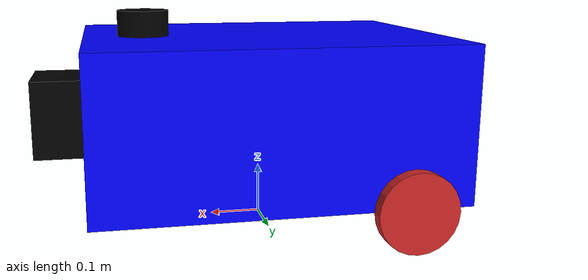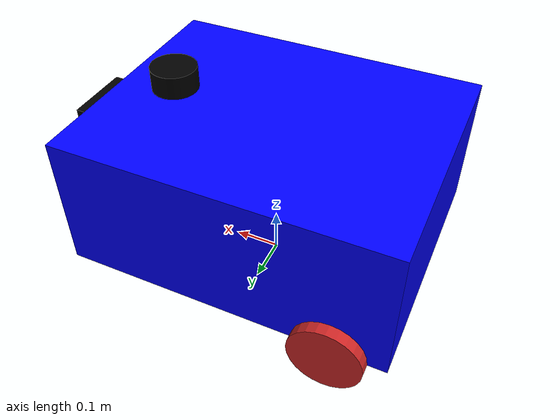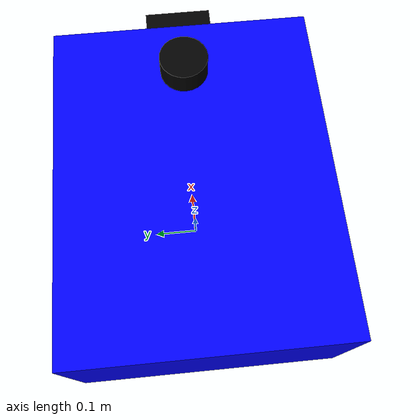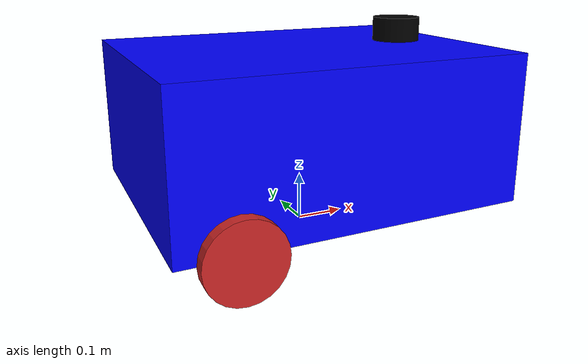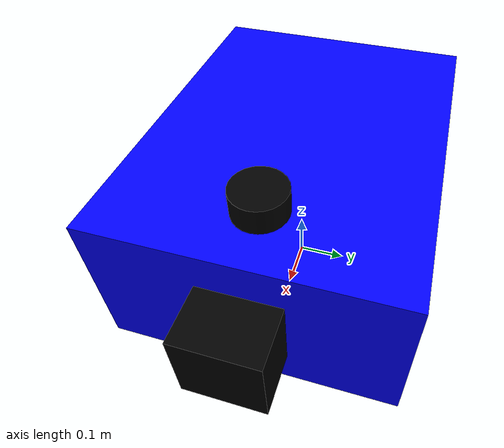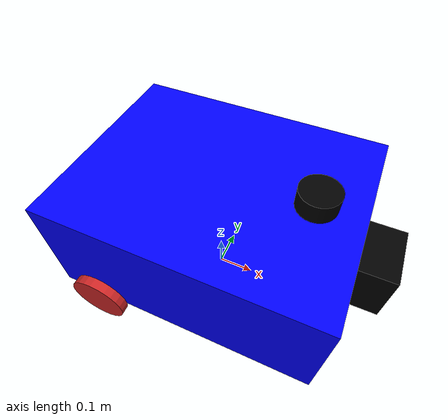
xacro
<?xml version="1.0"?>
<robot xmlns:xacro="http://www.ros.org/wiki/xacro" name="my_robot">

   <xacro:include filename="ros2_control.xacro" />

  <!-- Definire parametri -->
  <xacro:property name="robot_length" value="0.7"/>
  <xacro:property name="robot_width" value="0.55"/>
  <xacro:property name="robot_height" value="0.3"/>
  <xacro:property name="wheel_diameter" value="0.155"/>
  <xacro:property name="wheel_thickness" value="0.025"/>
  <xacro:property name="wheel_radius" value="${wheel_diameter / 2}"/>
  <xacro:property name="caster_wheel_radius" value="${wheel_diameter / 4}"/>
  <xacro:property name="wheel_offset_x" value="${-(robot_length / 3)}"/>
  <xacro:property name="caster_offset_x" value="${(robot_length / 3)}"/>
  <xacro:property name="wheel_z_offset" value="${wheel_radius}"/>
  <xacro:property name="wheel_y_offset" value="${(robot_width / 2) + (wheel_thickness / 2)}"/>
  <xacro:property name="lidar_height" value="0.05"/>
  <xacro:property name="lidar_diameter" value="0.1"/>

  <!-- Base footprint: proiecția pe sol -->
  <link name="base_link">
  </link>

  <!-- Base link: corpul principal al robotului -->
  <link name="base_chassis">
    <visual>
      <origin xyz="0 0 ${robot_height / 2}" rpy="0 0 0"/>
      <geometry>
        <box size="${robot_length} ${robot_width} ${robot_height}"/>
      </geometry>
      <material name="blue">
        <color rgba="0 0 1 1"/>
      </material>
    </visual>
    <collision>
      <origin xyz="0 0 ${robot_height / 2}" rpy="0 0 0"/>
      <geometry>
        <box size="${robot_length} ${robot_width} ${robot_height}"/>
      </geometry>
    </collision>
    <inertial>
      <origin xyz="0 0 ${robot_height / 2}" rpy="0 0 0"/>
      <mass value="3.95"/>
      <inertia ixx="${(1/12) * 3.95 * (robot_width * robot_width + robot_height * robot_height)}" ixy="0" ixz="0"
               iyy="${(1/12) * 3.95 * (robot_length * robot_length + robot_height * robot_height)}" iyz="0"
               izz="${(1/12) * 3.95 * (robot_length * robot_length + robot_width * robot_width)}"/>
    </inertial>
  </link>

  <!-- Legătura dintre base_footprint și base_link -->
  <joint name="base_footprint_to_base_link" type="fixed">
    <parent link="base_link"/>
    <child link="base_chassis"/>
    <origin xyz="0 0 ${wheel_radius}" rpy="0 0 0"/>
  </joint>
  <gazebo reference="base_chassis">
    <material>Gazebo/Blue</material>
  </gazebo>

  <!-- Roata stângă -->
  <link name="left_wheel">
    <visual>
      <origin xyz="0 0 0" rpy="-1.5708 0 0"/>
      <geometry>
        <cylinder length="${wheel_thickness}" radius="${wheel_radius}"/>
      </geometry>
    </visual>
    <collision>
      <origin xyz="0 0 0" rpy="-1.5708 0 0"/>
      <geometry>
        <cylinder length="${wheel_thickness}" radius="${wheel_radius}"/>
      </geometry>
    </collision>
    <inertial>
      <origin xyz="0 0 0" rpy="-1.5708 0 0"/>
      <mass value="0.4"/>
      <inertia ixx="${(1/2) * 0.4 * wheel_radius * wheel_radius}" ixy="0" ixz="0"
               iyy="${(1/2) * 0.4 * wheel_radius * wheel_radius}" iyz="0"
               izz="${0.4 * wheel_radius * wheel_radius}"/>
    </inertial>
  </link>

  <joint name="base_to_left_wheel" type="continuous">
    <parent link="base_chassis"/>
    <child link="left_wheel"/>
    <origin xyz="${wheel_offset_x} ${wheel_y_offset} 0" rpy="0 0 0"/>
    <axis xyz="0 1 0"/>
  </joint>
  <gazebo reference="left_wheel">
    <material>Gazebo/Red</material>
  </gazebo>

  <!-- Roata dreaptă -->
  <link name="right_wheel">
    <visual>
      <origin xyz="0 0 0" rpy="-1.5708 0 0"/>
      <geometry>
        <cylinder length="${wheel_thickness}" radius="${wheel_radius}"/>
      </geometry>
    </visual>
    <collision>
      <origin xyz="0 0 0" rpy="-1.5708 0 0"/>
      <geometry>
        <cylinder length="${wheel_thickness}" radius="${wheel_radius}"/>
      </geometry>
    </collision>
    <inertial>
      <origin xyz="0 0 0" rpy="-1.5708 0 0"/>
      <mass value="0.4"/>
      <inertia ixx="${(1/2) * 0.4 * wheel_radius * wheel_radius}" ixy="0" ixz="0"
               iyy="${(1/2) * 0.4 * wheel_radius * wheel_radius}" iyz="0"
               izz="${0.4 * wheel_radius * wheel_radius}"/>
    </inertial>
  </link>

  <joint name="base_to_right_wheel" type="continuous">
    <parent link="base_chassis"/>
    <child link="right_wheel"/>
    <origin xyz="${wheel_offset_x} -${wheel_y_offset} 0" rpy="0 0 0"/>
    <axis xyz="0 1 0"/>
  </joint>
  <gazebo reference="right_wheel">
    <material>Gazebo/Red</material>
  </gazebo>

    <!-- Caster wheel -->
  <link name="caster_wheel">
    <visual>
      <origin xyz="0 0 0" rpy="0 0 0"/>
      <geometry>
        <sphere radius="${caster_wheel_radius}"/>
      </geometry>
      <material name="black">
        <color rgba="0 0 0 1"/>
      </material>
    </visual>
    <collision>
      <origin xyz="0 0 0" rpy="0 0 0"/>
      <geometry>
        <sphere radius="${caster_wheel_radius}"/>
      </geometry>
    </collision>
    <inertial>
      <origin xyz="0 0 0" rpy="0 0 0"/>
      <mass value="0.25"/>
      <inertia ixx="${(2/5) * 0.25 * caster_wheel_radius * caster_wheel_radius}" ixy="0" ixz="0"
               iyy="${(2/5) * 0.25 * caster_wheel_radius * caster_wheel_radius}" iyz="0"
               izz="${(2/5) * 0.25 * caster_wheel_radius * caster_wheel_radius}"/>
    </inertial>
  </link>

  <!-- Joint pentru caster wheel -->
  <joint name="base_to_caster_wheel" type="fixed">
    <parent link="base_chassis"/>
    <child link="caster_wheel"/>
    <origin xyz="${caster_offset_x} 0 -${caster_wheel_radius}" rpy="0 0 0"/>
  </joint>
  <gazebo reference="caster_wheel">
    <material>Gazebo/Red</material>
    <mu1 value="0.001"/>
    <mu2 value="0.001"/>
  </gazebo>

  <!-- Lidar link -->
  <link name="lidar_link">
    <visual>
      <origin xyz="0 0 0" rpy="0 0 0"/>
      <geometry>
        <cylinder length="${lidar_height}" radius="${lidar_diameter / 2}"/>
      </geometry>
      <material name="black">
        <color rgba="0 0 0 1"/>
      </material>
    </visual>
    <collision>
      <origin xyz="0 0 0" rpy="0 0 0"/>
      <geometry>
        <cylinder length="${wheel_thickness}" radius="${wheel_radius}"/>
      </geometry>
    </collision>
    <inertial>
      <origin xyz="0 0 0" rpy="0 0 0"/>
      <mass value="0.4"/>
      <inertia ixx="${(1/2) * 0.4 * wheel_radius * wheel_radius}" ixy="0" ixz="0"
               iyy="${(1/2) * 0.4 * wheel_radius * wheel_radius}" iyz="0"
               izz="${0.4 * wheel_radius * wheel_radius}"/>
    </inertial>
  </link>

  <joint name="base_to_lidar" type="fixed">
    <parent link="base_chassis"/>
    <child link="lidar_link"/>
    <origin xyz="${caster_offset_x} 0 ${robot_height + lidar_height/2}" rpy="0 0 0"/>
  </joint>

  <gazebo reference="lidar_link">
    <material>Gazebo/Red</material>
    <mu1 value="0.001"/>
     <mu2 value="0.001"/>
     <sensor name="laser" type="ray">
        <pose> 0 0 0 0 0 0 </pose>
        <visualize>false</visualize>
        <update_rate>10</update_rate>
        <ray>
          <scan>
              <horizontal>
                <samples>360</samples>
                <min_angle>-3.14</min_angle>
                <max_angle>3.14</max_angle>
              </horizontal>
          </scan>
          <range>
            <min>0.3</min>
            <max>12</max>
          </range>
        </ray>
        <plugin name="laser_controller" filename="libgazebo_ros_ray_sensor.so">
          <ros>
            <argument>~/out:=scan</argument>
          </ros>
          <output_type>sensor_msgs/LaserScan</output_type>
          <frame_name>laser_frame</frame_name>
        </plugin>
     </sensor>
    </gazebo>

<!-- Camera principală -->
<link name="camera_link">
    <visual>
      <origin xyz="0 0 0" rpy="0 0 0"/>
      <geometry>
        <box size="0.1 0.15 0.15"/>
      </geometry>
      <material name="black">
        <color rgba="0 0 0 1"/>
      </material>
    </visual>
</link>

<!-- Conectează camera de șasiu -->
<joint name="base_to_camera" type="fixed">
    <parent link="base_chassis"/>
    <child link="camera_link"/>
    <origin xyz="${robot_length / 2 + 0.05} 0 ${robot_height/2}" rpy="0 0 0"/>
</joint>

<!-- Camera optical link -->
<link name="camera_link_optical"/>

<!-- Joint pentru camera optică -->
<joint name="camera_optical_joint" type="fixed">
    <parent link="camera_link"/>
    <child link="camera_link_optical"/>
    <origin xyz="0 0 0" rpy="${-pi/2} 0 ${-pi/2}"/>
</joint>

  <gazebo reference="camera_link">
    <material>Gazebo/Black</material>

     <sensor name="camera" type="camera">
        <pose> 0 0 0 0 0 0 </pose>
        <visualize>true</visualize>
        <update_rate>10</update_rate>
        <camera>
          <horizontal_fov>1.33</horizontal_fov>
          <image>
              <format>R8G8B8</format>
              <width>680</width>
              <height>480</height>
          </image>
            <clip>
              <near>0.05</near>
              <far>8.0</far>
            </clip>
        </camera>
        <plugin name="camera_controller" filename="libgazebo_ros_camera.so">
          <frame_name>camera_link_optical</frame_name>
        </plugin>
      </sensor>
    </gazebo>

</robot>
